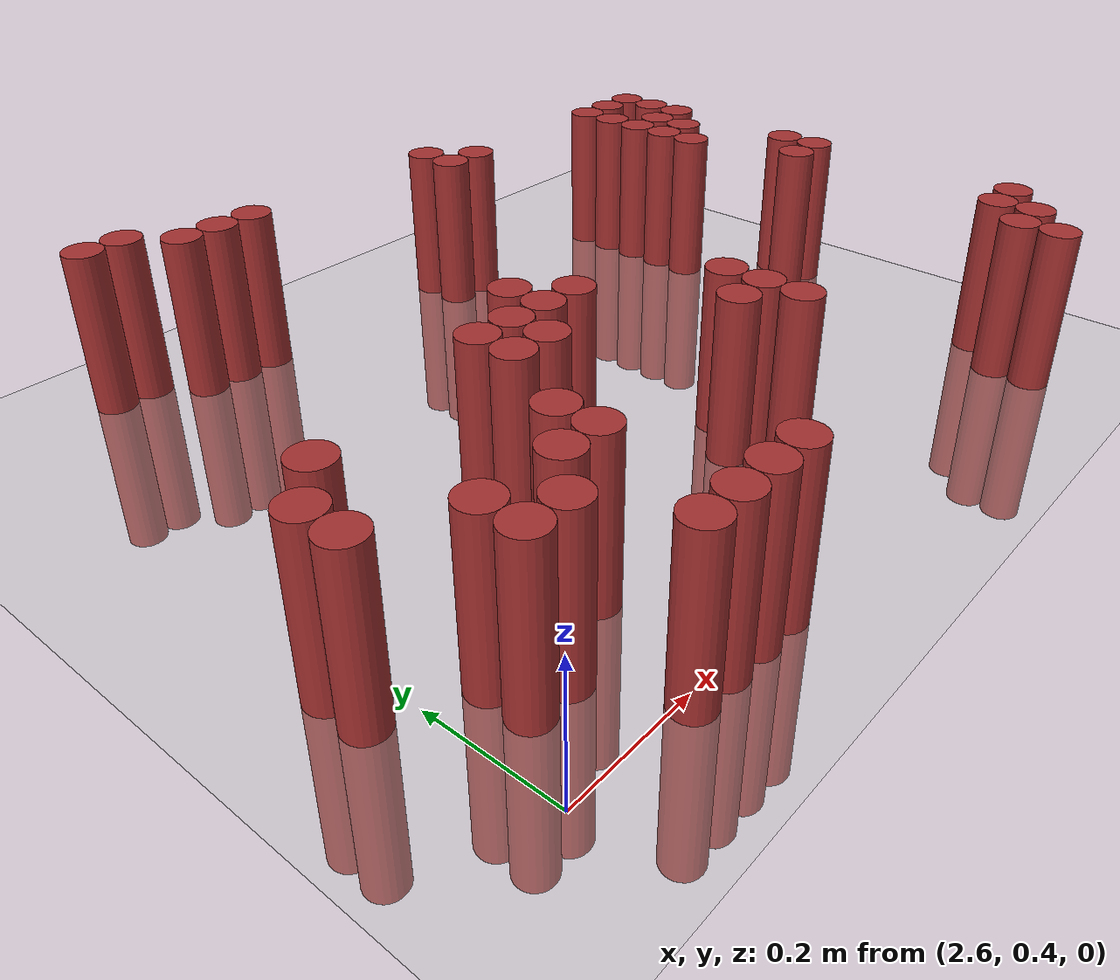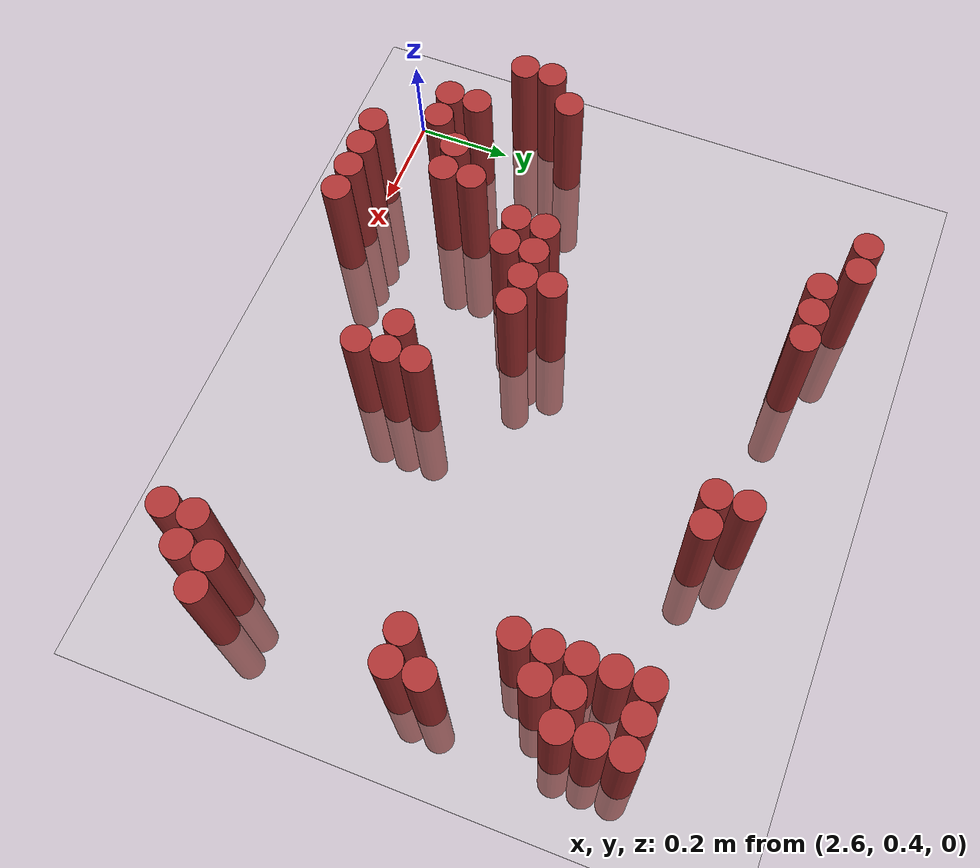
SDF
<sdf version="1.6">
 <world name="default">
  <model name="ground_plane">
   <static>1</static>
   <link name="link">
    <collision name="collision">
     <geometry><plane><normal>0 0 1</normal><size>100 100</size></plane></geometry>
     <surface><friction><ode><mu>100</mu><mu2>50</mu2></ode></friction></surface>
    </collision>
    <visual name="visual">
     <cast_shadows>0</cast_shadows>
     <geometry><plane><normal>0 0 1</normal><size>100 100</size></plane></geometry>
     <material>
      <script><uri>file://media/materials/scripts/gazebo.material</uri><name>Gazebo/Grey</name></script>
     </material>
    </visual>
   </link>
  </model>
  <model name="unit_cylinder_164">
   <static>1</static>
   <pose>2.730000 1.410000 0.000000 0.000000 0.000000 0.000000</pose>
   <link name="link">
    <inertial>
     <mass>1</mass>
     <inertia><ixx>0.145833</ixx><ixy>0</ixy><ixz>0</ixz><iyy>0.145833</iyy><iyz>0</iyz><izz>0.125</izz></inertia>
    </inertial>
    <collision name="collision">
     <geometry><cylinder><radius>0.030000</radius><length>0.5</length></cylinder></geometry>
    </collision>
    <visual name="visual">
     <geometry><cylinder><radius>0.030000</radius><length>0.5</length></cylinder></geometry>
     <material>
      <ambient>0.648000 0.192000 0.192000 1</ambient>
      <diffuse>0.648000 0.192000 0.192000 1</diffuse>
     </material>
     <material>
      <script><name>Gazebo/Grey</name><uri>file://media/materials/scripts/gazebo.material</uri></script>
     </material>
    </visual>
   </link>
  </model>
  <model name="unit_cylinder_165">
   <static>1</static>
   <pose>2.790000 1.410000 0.000000 0.000000 0.000000 0.000000</pose>
   <link name="link">
    <inertial>
     <mass>1</mass>
     <inertia><ixx>0.145833</ixx><ixy>0</ixy><ixz>0</ixz><iyy>0.145833</iyy><iyz>0</iyz><izz>0.125</izz></inertia>
    </inertial>
    <collision name="collision">
     <geometry><cylinder><radius>0.030000</radius><length>0.5</length></cylinder></geometry>
    </collision>
    <visual name="visual">
     <geometry><cylinder><radius>0.030000</radius><length>0.5</length></cylinder></geometry>
     <material>
      <ambient>0.648000 0.192000 0.192000 1</ambient>
      <diffuse>0.648000 0.192000 0.192000 1</diffuse>
     </material>
     <material>
      <script><name>Gazebo/Grey</name><uri>file://media/materials/scripts/gazebo.material</uri></script>
     </material>
    </visual>
   </link>
  </model>
  <model name="unit_cylinder_170">
   <static>1</static>
   <pose>2.850000 1.350000 0.000000 0.000000 0.000000 0.000000</pose>
   <link name="link">
    <inertial>
     <mass>1</mass>
     <inertia><ixx>0.145833</ixx><ixy>0</ixy><ixz>0</ixz><iyy>0.145833</iyy><iyz>0</iyz><izz>0.125</izz></inertia>
    </inertial>
    <collision name="collision">
     <geometry><cylinder><radius>0.030000</radius><length>0.5</length></cylinder></geometry>
    </collision>
    <visual name="visual">
     <geometry><cylinder><radius>0.030000</radius><length>0.5</length></cylinder></geometry>
     <material>
      <ambient>0.648000 0.192000 0.192000 1</ambient>
      <diffuse>0.648000 0.192000 0.192000 1</diffuse>
     </material>
     <material>
      <script><name>Gazebo/Grey</name><uri>file://media/materials/scripts/gazebo.material</uri></script>
     </material>
    </visual>
   </link>
  </model>
  <model name="unit_cylinder_171">
   <static>1</static>
   <pose>2.910000 1.350000 0.000000 0.000000 0.000000 0.000000</pose>
   <link name="link">
    <inertial>
     <mass>1</mass>
     <inertia><ixx>0.145833</ixx><ixy>0</ixy><ixz>0</ixz><iyy>0.145833</iyy><iyz>0</iyz><izz>0.125</izz></inertia>
    </inertial>
    <collision name="collision">
     <geometry><cylinder><radius>0.030000</radius><length>0.5</length></cylinder></geometry>
    </collision>
    <visual name="visual">
     <geometry><cylinder><radius>0.030000</radius><length>0.5</length></cylinder></geometry>
     <material>
      <ambient>0.648000 0.192000 0.192000 1</ambient>
      <diffuse>0.648000 0.192000 0.192000 1</diffuse>
     </material>
     <material>
      <script><name>Gazebo/Grey</name><uri>file://media/materials/scripts/gazebo.material</uri></script>
     </material>
    </visual>
   </link>
  </model>
  <model name="unit_cylinder_172">
   <static>1</static>
   <pose>2.970000 1.350000 0.000000 0.000000 0.000000 0.000000</pose>
   <link name="link">
    <inertial>
     <mass>1</mass>
     <inertia><ixx>0.145833</ixx><ixy>0</ixy><ixz>0</ixz><iyy>0.145833</iyy><iyz>0</iyz><izz>0.125</izz></inertia>
    </inertial>
    <collision name="collision">
     <geometry><cylinder><radius>0.030000</radius><length>0.5</length></cylinder></geometry>
    </collision>
    <visual name="visual">
     <geometry><cylinder><radius>0.030000</radius><length>0.5</length></cylinder></geometry>
     <material>
      <ambient>0.648000 0.192000 0.192000 1</ambient>
      <diffuse>0.648000 0.192000 0.192000 1</diffuse>
     </material>
     <material>
      <script><name>Gazebo/Grey</name><uri>file://media/materials/scripts/gazebo.material</uri></script>
     </material>
    </visual>
   </link>
  </model>
  <model name="unit_cylinder_173">
   <static>1</static>
   <pose>3.330000 1.350000 0.000000 0.000000 0.000000 0.000000</pose>
   <link name="link">
    <inertial>
     <mass>1</mass>
     <inertia><ixx>0.145833</ixx><ixy>0</ixy><ixz>0</ixz><iyy>0.145833</iyy><iyz>0</iyz><izz>0.125</izz></inertia>
    </inertial>
    <collision name="collision">
     <geometry><cylinder><radius>0.030000</radius><length>0.5</length></cylinder></geometry>
    </collision>
    <visual name="visual">
     <geometry><cylinder><radius>0.030000</radius><length>0.5</length></cylinder></geometry>
     <material>
      <ambient>0.648000 0.192000 0.192000 1</ambient>
      <diffuse>0.648000 0.192000 0.192000 1</diffuse>
     </material>
     <material>
      <script><name>Gazebo/Grey</name><uri>file://media/materials/scripts/gazebo.material</uri></script>
     </material>
    </visual>
   </link>
  </model>
  <model name="unit_cylinder_176">
   <static>1</static>
   <pose>3.330000 1.290000 0.000000 0.000000 0.000000 0.000000</pose>
   <link name="link">
    <inertial>
     <mass>1</mass>
     <inertia><ixx>0.145833</ixx><ixy>0</ixy><ixz>0</ixz><iyy>0.145833</iyy><iyz>0</iyz><izz>0.125</izz></inertia>
    </inertial>
    <collision name="collision">
     <geometry><cylinder><radius>0.030000</radius><length>0.5</length></cylinder></geometry>
    </collision>
    <visual name="visual">
     <geometry><cylinder><radius>0.030000</radius><length>0.5</length></cylinder></geometry>
     <material>
      <ambient>0.648000 0.192000 0.192000 1</ambient>
      <diffuse>0.648000 0.192000 0.192000 1</diffuse>
     </material>
     <material>
      <script><name>Gazebo/Grey</name><uri>file://media/materials/scripts/gazebo.material</uri></script>
     </material>
    </visual>
   </link>
  </model>
  <model name="unit_cylinder_177">
   <static>1</static>
   <pose>3.390000 1.290000 0.000000 0.000000 0.000000 0.000000</pose>
   <link name="link">
    <inertial>
     <mass>1</mass>
     <inertia><ixx>0.145833</ixx><ixy>0</ixy><ixz>0</ixz><iyy>0.145833</iyy><iyz>0</iyz><izz>0.125</izz></inertia>
    </inertial>
    <collision name="collision">
     <geometry><cylinder><radius>0.030000</radius><length>0.5</length></cylinder></geometry>
    </collision>
    <visual name="visual">
     <geometry><cylinder><radius>0.030000</radius><length>0.5</length></cylinder></geometry>
     <material>
      <ambient>0.648000 0.192000 0.192000 1</ambient>
      <diffuse>0.648000 0.192000 0.192000 1</diffuse>
     </material>
     <material>
      <script><name>Gazebo/Grey</name><uri>file://media/materials/scripts/gazebo.material</uri></script>
     </material>
    </visual>
   </link>
  </model>
  <model name="unit_cylinder_178">
   <static>1</static>
   <pose>3.690000 1.290000 0.000000 0.000000 0.000000 0.000000</pose>
   <link name="link">
    <inertial>
     <mass>1</mass>
     <inertia><ixx>0.145833</ixx><ixy>0</ixy><ixz>0</ixz><iyy>0.145833</iyy><iyz>0</iyz><izz>0.125</izz></inertia>
    </inertial>
    <collision name="collision">
     <geometry><cylinder><radius>0.030000</radius><length>0.5</length></cylinder></geometry>
    </collision>
    <visual name="visual">
     <geometry><cylinder><radius>0.030000</radius><length>0.5</length></cylinder></geometry>
     <material>
      <ambient>0.648000 0.192000 0.192000 1</ambient>
      <diffuse>0.648000 0.192000 0.192000 1</diffuse>
     </material>
     <material>
      <script><name>Gazebo/Grey</name><uri>file://media/materials/scripts/gazebo.material</uri></script>
     </material>
    </visual>
   </link>
  </model>
  <model name="unit_cylinder_179">
   <static>1</static>
   <pose>3.750000 1.290000 0.000000 0.000000 0.000000 0.000000</pose>
   <link name="link">
    <inertial>
     <mass>1</mass>
     <inertia><ixx>0.145833</ixx><ixy>0</ixy><ixz>0</ixz><iyy>0.145833</iyy><iyz>0</iyz><izz>0.125</izz></inertia>
    </inertial>
    <collision name="collision">
     <geometry><cylinder><radius>0.030000</radius><length>0.5</length></cylinder></geometry>
    </collision>
    <visual name="visual">
     <geometry><cylinder><radius>0.030000</radius><length>0.5</length></cylinder></geometry>
     <material>
      <ambient>0.648000 0.192000 0.192000 1</ambient>
      <diffuse>0.648000 0.192000 0.192000 1</diffuse>
     </material>
     <material>
      <script><name>Gazebo/Grey</name><uri>file://media/materials/scripts/gazebo.material</uri></script>
     </material>
    </visual>
   </link>
  </model>
  <model name="unit_cylinder_180">
   <static>1</static>
   <pose>3.810000 1.290000 0.000000 0.000000 0.000000 0.000000</pose>
   <link name="link">
    <inertial>
     <mass>1</mass>
     <inertia><ixx>0.145833</ixx><ixy>0</ixy><ixz>0</ixz><iyy>0.145833</iyy><iyz>0</iyz><izz>0.125</izz></inertia>
    </inertial>
    <collision name="collision">
     <geometry><cylinder><radius>0.030000</radius><length>0.5</length></cylinder></geometry>
    </collision>
    <visual name="visual">
     <geometry><cylinder><radius>0.030000</radius><length>0.5</length></cylinder></geometry>
     <material>
      <ambient>0.648000 0.192000 0.192000 1</ambient>
      <diffuse>0.648000 0.192000 0.192000 1</diffuse>
     </material>
     <material>
      <script><name>Gazebo/Grey</name><uri>file://media/materials/scripts/gazebo.material</uri></script>
     </material>
    </visual>
   </link>
  </model>
  <model name="unit_cylinder_183">
   <static>1</static>
   <pose>3.690000 1.230000 0.000000 0.000000 0.000000 0.000000</pose>
   <link name="link">
    <inertial>
     <mass>1</mass>
     <inertia><ixx>0.145833</ixx><ixy>0</ixy><ixz>0</ixz><iyy>0.145833</iyy><iyz>0</iyz><izz>0.125</izz></inertia>
    </inertial>
    <collision name="collision">
     <geometry><cylinder><radius>0.030000</radius><length>0.5</length></cylinder></geometry>
    </collision>
    <visual name="visual">
     <geometry><cylinder><radius>0.030000</radius><length>0.5</length></cylinder></geometry>
     <material>
      <ambient>0.648000 0.192000 0.192000 1</ambient>
      <diffuse>0.648000 0.192000 0.192000 1</diffuse>
     </material>
     <material>
      <script><name>Gazebo/Grey</name><uri>file://media/materials/scripts/gazebo.material</uri></script>
     </material>
    </visual>
   </link>
  </model>
  <model name="unit_cylinder_184">
   <static>1</static>
   <pose>3.810000 1.230000 0.000000 0.000000 0.000000 0.000000</pose>
   <link name="link">
    <inertial>
     <mass>1</mass>
     <inertia><ixx>0.145833</ixx><ixy>0</ixy><ixz>0</ixz><iyy>0.145833</iyy><iyz>0</iyz><izz>0.125</izz></inertia>
    </inertial>
    <collision name="collision">
     <geometry><cylinder><radius>0.030000</radius><length>0.5</length></cylinder></geometry>
    </collision>
    <visual name="visual">
     <geometry><cylinder><radius>0.030000</radius><length>0.5</length></cylinder></geometry>
     <material>
      <ambient>0.648000 0.192000 0.192000 1</ambient>
      <diffuse>0.648000 0.192000 0.192000 1</diffuse>
     </material>
     <material>
      <script><name>Gazebo/Grey</name><uri>file://media/materials/scripts/gazebo.material</uri></script>
     </material>
    </visual>
   </link>
  </model>
  <model name="unit_cylinder_185">
   <static>1</static>
   <pose>3.690000 1.170000 0.000000 0.000000 0.000000 0.000000</pose>
   <link name="link">
    <inertial>
     <mass>1</mass>
     <inertia><ixx>0.145833</ixx><ixy>0</ixy><ixz>0</ixz><iyy>0.145833</iyy><iyz>0</iyz><izz>0.125</izz></inertia>
    </inertial>
    <collision name="collision">
     <geometry><cylinder><radius>0.030000</radius><length>0.5</length></cylinder></geometry>
    </collision>
    <visual name="visual">
     <geometry><cylinder><radius>0.030000</radius><length>0.5</length></cylinder></geometry>
     <material>
      <ambient>0.648000 0.192000 0.192000 1</ambient>
      <diffuse>0.648000 0.192000 0.192000 1</diffuse>
     </material>
     <material>
      <script><name>Gazebo/Grey</name><uri>file://media/materials/scripts/gazebo.material</uri></script>
     </material>
    </visual>
   </link>
  </model>
  <model name="unit_cylinder_186">
   <static>1</static>
   <pose>3.750000 1.170000 0.000000 0.000000 0.000000 0.000000</pose>
   <link name="link">
    <inertial>
     <mass>1</mass>
     <inertia><ixx>0.145833</ixx><ixy>0</ixy><ixz>0</ixz><iyy>0.145833</iyy><iyz>0</iyz><izz>0.125</izz></inertia>
    </inertial>
    <collision name="collision">
     <geometry><cylinder><radius>0.030000</radius><length>0.5</length></cylinder></geometry>
    </collision>
    <visual name="visual">
     <geometry><cylinder><radius>0.030000</radius><length>0.5</length></cylinder></geometry>
     <material>
      <ambient>0.648000 0.192000 0.192000 1</ambient>
      <diffuse>0.648000 0.192000 0.192000 1</diffuse>
     </material>
     <material>
      <script><name>Gazebo/Grey</name><uri>file://media/materials/scripts/gazebo.material</uri></script>
     </material>
    </visual>
   </link>
  </model>
  <model name="unit_cylinder_187">
   <static>1</static>
   <pose>3.810000 1.170000 0.000000 0.000000 0.000000 0.000000</pose>
   <link name="link">
    <inertial>
     <mass>1</mass>
     <inertia><ixx>0.145833</ixx><ixy>0</ixy><ixz>0</ixz><iyy>0.145833</iyy><iyz>0</iyz><izz>0.125</izz></inertia>
    </inertial>
    <collision name="collision">
     <geometry><cylinder><radius>0.030000</radius><length>0.5</length></cylinder></geometry>
    </collision>
    <visual name="visual">
     <geometry><cylinder><radius>0.030000</radius><length>0.5</length></cylinder></geometry>
     <material>
      <ambient>0.648000 0.192000 0.192000 1</ambient>
      <diffuse>0.648000 0.192000 0.192000 1</diffuse>
     </material>
     <material>
      <script><name>Gazebo/Grey</name><uri>file://media/materials/scripts/gazebo.material</uri></script>
     </material>
    </visual>
   </link>
  </model>
  <model name="unit_cylinder_188">
   <static>1</static>
   <pose>3.690000 1.110000 0.000000 0.000000 0.000000 0.000000</pose>
   <link name="link">
    <inertial>
     <mass>1</mass>
     <inertia><ixx>0.145833</ixx><ixy>0</ixy><ixz>0</ixz><iyy>0.145833</iyy><iyz>0</iyz><izz>0.125</izz></inertia>
    </inertial>
    <collision name="collision">
     <geometry><cylinder><radius>0.030000</radius><length>0.5</length></cylinder></geometry>
    </collision>
    <visual name="visual">
     <geometry><cylinder><radius>0.030000</radius><length>0.5</length></cylinder></geometry>
     <material>
      <ambient>0.648000 0.192000 0.192000 1</ambient>
      <diffuse>0.648000 0.192000 0.192000 1</diffuse>
     </material>
     <material>
      <script><name>Gazebo/Grey</name><uri>file://media/materials/scripts/gazebo.material</uri></script>
     </material>
    </visual>
   </link>
  </model>
  <model name="unit_cylinder_189">
   <static>1</static>
   <pose>3.750000 1.110000 0.000000 0.000000 0.000000 0.000000</pose>
   <link name="link">
    <inertial>
     <mass>1</mass>
     <inertia><ixx>0.145833</ixx><ixy>0</ixy><ixz>0</ixz><iyy>0.145833</iyy><iyz>0</iyz><izz>0.125</izz></inertia>
    </inertial>
    <collision name="collision">
     <geometry><cylinder><radius>0.030000</radius><length>0.5</length></cylinder></geometry>
    </collision>
    <visual name="visual">
     <geometry><cylinder><radius>0.030000</radius><length>0.5</length></cylinder></geometry>
     <material>
      <ambient>0.648000 0.192000 0.192000 1</ambient>
      <diffuse>0.648000 0.192000 0.192000 1</diffuse>
     </material>
     <material>
      <script><name>Gazebo/Grey</name><uri>file://media/materials/scripts/gazebo.material</uri></script>
     </material>
    </visual>
   </link>
  </model>
  <model name="unit_cylinder_190">
   <static>1</static>
   <pose>3.690000 1.050000 0.000000 0.000000 0.000000 0.000000</pose>
   <link name="link">
    <inertial>
     <mass>1</mass>
     <inertia><ixx>0.145833</ixx><ixy>0</ixy><ixz>0</ixz><iyy>0.145833</iyy><iyz>0</iyz><izz>0.125</izz></inertia>
    </inertial>
    <collision name="collision">
     <geometry><cylinder><radius>0.030000</radius><length>0.5</length></cylinder></geometry>
    </collision>
    <visual name="visual">
     <geometry><cylinder><radius>0.030000</radius><length>0.5</length></cylinder></geometry>
     <material>
      <ambient>0.648000 0.192000 0.192000 1</ambient>
      <diffuse>0.648000 0.192000 0.192000 1</diffuse>
     </material>
     <material>
      <script><name>Gazebo/Grey</name><uri>file://media/materials/scripts/gazebo.material</uri></script>
     </material>
    </visual>
   </link>
  </model>
  <model name="unit_cylinder_191">
   <static>1</static>
   <pose>3.810000 0.930000 0.000000 0.000000 0.000000 0.000000</pose>
   <link name="link">
    <inertial>
     <mass>1</mass>
     <inertia><ixx>0.145833</ixx><ixy>0</ixy><ixz>0</ixz><iyy>0.145833</iyy><iyz>0</iyz><izz>0.125</izz></inertia>
    </inertial>
    <collision name="collision">
     <geometry><cylinder><radius>0.030000</radius><length>0.5</length></cylinder></geometry>
    </collision>
    <visual name="visual">
     <geometry><cylinder><radius>0.030000</radius><length>0.5</length></cylinder></geometry>
     <material>
      <ambient>0.648000 0.192000 0.192000 1</ambient>
      <diffuse>0.648000 0.192000 0.192000 1</diffuse>
     </material>
     <material>
      <script><name>Gazebo/Grey</name><uri>file://media/materials/scripts/gazebo.material</uri></script>
     </material>
    </visual>
   </link>
  </model>
  <model name="unit_cylinder_192">
   <static>1</static>
   <pose>3.030000 0.870000 0.000000 0.000000 0.000000 0.000000</pose>
   <link name="link">
    <inertial>
     <mass>1</mass>
     <inertia><ixx>0.145833</ixx><ixy>0</ixy><ixz>0</ixz><iyy>0.145833</iyy><iyz>0</iyz><izz>0.125</izz></inertia>
    </inertial>
    <collision name="collision">
     <geometry><cylinder><radius>0.030000</radius><length>0.5</length></cylinder></geometry>
    </collision>
    <visual name="visual">
     <geometry><cylinder><radius>0.030000</radius><length>0.5</length></cylinder></geometry>
     <material>
      <ambient>0.648000 0.192000 0.192000 1</ambient>
      <diffuse>0.648000 0.192000 0.192000 1</diffuse>
     </material>
     <material>
      <script><name>Gazebo/Grey</name><uri>file://media/materials/scripts/gazebo.material</uri></script>
     </material>
    </visual>
   </link>
  </model>
  <model name="unit_cylinder_193">
   <static>1</static>
   <pose>3.750000 0.870000 0.000000 0.000000 0.000000 0.000000</pose>
   <link name="link">
    <inertial>
     <mass>1</mass>
     <inertia><ixx>0.145833</ixx><ixy>0</ixy><ixz>0</ixz><iyy>0.145833</iyy><iyz>0</iyz><izz>0.125</izz></inertia>
    </inertial>
    <collision name="collision">
     <geometry><cylinder><radius>0.030000</radius><length>0.5</length></cylinder></geometry>
    </collision>
    <visual name="visual">
     <geometry><cylinder><radius>0.030000</radius><length>0.5</length></cylinder></geometry>
     <material>
      <ambient>0.648000 0.192000 0.192000 1</ambient>
      <diffuse>0.648000 0.192000 0.192000 1</diffuse>
     </material>
     <material>
      <script><name>Gazebo/Grey</name><uri>file://media/materials/scripts/gazebo.material</uri></script>
     </material>
    </visual>
   </link>
  </model>
  <model name="unit_cylinder_194">
   <static>1</static>
   <pose>3.810000 0.870000 0.000000 0.000000 0.000000 0.000000</pose>
   <link name="link">
    <inertial>
     <mass>1</mass>
     <inertia><ixx>0.145833</ixx><ixy>0</ixy><ixz>0</ixz><iyy>0.145833</iyy><iyz>0</iyz><izz>0.125</izz></inertia>
    </inertial>
    <collision name="collision">
     <geometry><cylinder><radius>0.030000</radius><length>0.5</length></cylinder></geometry>
    </collision>
    <visual name="visual">
     <geometry><cylinder><radius>0.030000</radius><length>0.5</length></cylinder></geometry>
     <material>
      <ambient>0.648000 0.192000 0.192000 1</ambient>
      <diffuse>0.648000 0.192000 0.192000 1</diffuse>
     </material>
     <material>
      <script><name>Gazebo/Grey</name><uri>file://media/materials/scripts/gazebo.material</uri></script>
     </material>
    </visual>
   </link>
  </model>
  <model name="unit_cylinder_195">
   <static>1</static>
   <pose>2.910000 0.810000 0.000000 0.000000 0.000000 0.000000</pose>
   <link name="link">
    <inertial>
     <mass>1</mass>
     <inertia><ixx>0.145833</ixx><ixy>0</ixy><ixz>0</ixz><iyy>0.145833</iyy><iyz>0</iyz><izz>0.125</izz></inertia>
    </inertial>
    <collision name="collision">
     <geometry><cylinder><radius>0.030000</radius><length>0.5</length></cylinder></geometry>
    </collision>
    <visual name="visual">
     <geometry><cylinder><radius>0.030000</radius><length>0.5</length></cylinder></geometry>
     <material>
      <ambient>0.648000 0.192000 0.192000 1</ambient>
      <diffuse>0.648000 0.192000 0.192000 1</diffuse>
     </material>
     <material>
      <script><name>Gazebo/Grey</name><uri>file://media/materials/scripts/gazebo.material</uri></script>
     </material>
    </visual>
   </link>
  </model>
  <model name="unit_cylinder_196">
   <static>1</static>
   <pose>2.970000 0.810000 0.000000 0.000000 0.000000 0.000000</pose>
   <link name="link">
    <inertial>
     <mass>1</mass>
     <inertia><ixx>0.145833</ixx><ixy>0</ixy><ixz>0</ixz><iyy>0.145833</iyy><iyz>0</iyz><izz>0.125</izz></inertia>
    </inertial>
    <collision name="collision">
     <geometry><cylinder><radius>0.030000</radius><length>0.5</length></cylinder></geometry>
    </collision>
    <visual name="visual">
     <geometry><cylinder><radius>0.030000</radius><length>0.5</length></cylinder></geometry>
     <material>
      <ambient>0.648000 0.192000 0.192000 1</ambient>
      <diffuse>0.648000 0.192000 0.192000 1</diffuse>
     </material>
     <material>
      <script><name>Gazebo/Grey</name><uri>file://media/materials/scripts/gazebo.material</uri></script>
     </material>
    </visual>
   </link>
  </model>
  <model name="unit_cylinder_197">
   <static>1</static>
   <pose>3.030000 0.810000 0.000000 0.000000 0.000000 0.000000</pose>
   <link name="link">
    <inertial>
     <mass>1</mass>
     <inertia><ixx>0.145833</ixx><ixy>0</ixy><ixz>0</ixz><iyy>0.145833</iyy><iyz>0</iyz><izz>0.125</izz></inertia>
    </inertial>
    <collision name="collision">
     <geometry><cylinder><radius>0.030000</radius><length>0.5</length></cylinder></geometry>
    </collision>
    <visual name="visual">
     <geometry><cylinder><radius>0.030000</radius><length>0.5</length></cylinder></geometry>
     <material>
      <ambient>0.648000 0.192000 0.192000 1</ambient>
      <diffuse>0.648000 0.192000 0.192000 1</diffuse>
     </material>
     <material>
      <script><name>Gazebo/Grey</name><uri>file://media/materials/scripts/gazebo.material</uri></script>
     </material>
    </visual>
   </link>
  </model>
  <model name="unit_cylinder_198">
   <static>1</static>
   <pose>3.090000 0.810000 0.000000 0.000000 0.000000 0.000000</pose>
   <link name="link">
    <inertial>
     <mass>1</mass>
     <inertia><ixx>0.145833</ixx><ixy>0</ixy><ixz>0</ixz><iyy>0.145833</iyy><iyz>0</iyz><izz>0.125</izz></inertia>
    </inertial>
    <collision name="collision">
     <geometry><cylinder><radius>0.030000</radius><length>0.5</length></cylinder></geometry>
    </collision>
    <visual name="visual">
     <geometry><cylinder><radius>0.030000</radius><length>0.5</length></cylinder></geometry>
     <material>
      <ambient>0.648000 0.192000 0.192000 1</ambient>
      <diffuse>0.648000 0.192000 0.192000 1</diffuse>
     </material>
     <material>
      <script><name>Gazebo/Grey</name><uri>file://media/materials/scripts/gazebo.material</uri></script>
     </material>
    </visual>
   </link>
  </model>
  <model name="unit_cylinder_203">
   <static>1</static>
   <pose>2.610000 0.750000 0.000000 0.000000 0.000000 0.000000</pose>
   <link name="link">
    <inertial>
     <mass>1</mass>
     <inertia><ixx>0.145833</ixx><ixy>0</ixy><ixz>0</ixz><iyy>0.145833</iyy><iyz>0</iyz><izz>0.125</izz></inertia>
    </inertial>
    <collision name="collision">
     <geometry><cylinder><radius>0.030000</radius><length>0.5</length></cylinder></geometry>
    </collision>
    <visual name="visual">
     <geometry><cylinder><radius>0.030000</radius><length>0.5</length></cylinder></geometry>
     <material>
      <ambient>0.648000 0.192000 0.192000 1</ambient>
      <diffuse>0.648000 0.192000 0.192000 1</diffuse>
     </material>
     <material>
      <script><name>Gazebo/Grey</name><uri>file://media/materials/scripts/gazebo.material</uri></script>
     </material>
    </visual>
   </link>
  </model>
  <model name="unit_cylinder_204">
   <static>1</static>
   <pose>2.910000 0.750000 0.000000 0.000000 0.000000 0.000000</pose>
   <link name="link">
    <inertial>
     <mass>1</mass>
     <inertia><ixx>0.145833</ixx><ixy>0</ixy><ixz>0</ixz><iyy>0.145833</iyy><iyz>0</iyz><izz>0.125</izz></inertia>
    </inertial>
    <collision name="collision">
     <geometry><cylinder><radius>0.030000</radius><length>0.5</length></cylinder></geometry>
    </collision>
    <visual name="visual">
     <geometry><cylinder><radius>0.030000</radius><length>0.5</length></cylinder></geometry>
     <material>
      <ambient>0.648000 0.192000 0.192000 1</ambient>
      <diffuse>0.648000 0.192000 0.192000 1</diffuse>
     </material>
     <material>
      <script><name>Gazebo/Grey</name><uri>file://media/materials/scripts/gazebo.material</uri></script>
     </material>
    </visual>
   </link>
  </model>
  <model name="unit_cylinder_205">
   <static>1</static>
   <pose>2.970000 0.750000 0.000000 0.000000 0.000000 0.000000</pose>
   <link name="link">
    <inertial>
     <mass>1</mass>
     <inertia><ixx>0.145833</ixx><ixy>0</ixy><ixz>0</ixz><iyy>0.145833</iyy><iyz>0</iyz><izz>0.125</izz></inertia>
    </inertial>
    <collision name="collision">
     <geometry><cylinder><radius>0.030000</radius><length>0.5</length></cylinder></geometry>
    </collision>
    <visual name="visual">
     <geometry><cylinder><radius>0.030000</radius><length>0.5</length></cylinder></geometry>
     <material>
      <ambient>0.648000 0.192000 0.192000 1</ambient>
      <diffuse>0.648000 0.192000 0.192000 1</diffuse>
     </material>
     <material>
      <script><name>Gazebo/Grey</name><uri>file://media/materials/scripts/gazebo.material</uri></script>
     </material>
    </visual>
   </link>
  </model>
  <model name="unit_cylinder_212">
   <static>1</static>
   <pose>2.550000 0.690000 0.000000 0.000000 0.000000 0.000000</pose>
   <link name="link">
    <inertial>
     <mass>1</mass>
     <inertia><ixx>0.145833</ixx><ixy>0</ixy><ixz>0</ixz><iyy>0.145833</iyy><iyz>0</iyz><izz>0.125</izz></inertia>
    </inertial>
    <collision name="collision">
     <geometry><cylinder><radius>0.030000</radius><length>0.5</length></cylinder></geometry>
    </collision>
    <visual name="visual">
     <geometry><cylinder><radius>0.030000</radius><length>0.5</length></cylinder></geometry>
     <material>
      <ambient>0.648000 0.192000 0.192000 1</ambient>
      <diffuse>0.648000 0.192000 0.192000 1</diffuse>
     </material>
     <material>
      <script><name>Gazebo/Grey</name><uri>file://media/materials/scripts/gazebo.material</uri></script>
     </material>
    </visual>
   </link>
  </model>
  <model name="unit_cylinder_213">
   <static>1</static>
   <pose>3.270000 0.690000 0.000000 0.000000 0.000000 0.000000</pose>
   <link name="link">
    <inertial>
     <mass>1</mass>
     <inertia><ixx>0.145833</ixx><ixy>0</ixy><ixz>0</ixz><iyy>0.145833</iyy><iyz>0</iyz><izz>0.125</izz></inertia>
    </inertial>
    <collision name="collision">
     <geometry><cylinder><radius>0.030000</radius><length>0.5</length></cylinder></geometry>
    </collision>
    <visual name="visual">
     <geometry><cylinder><radius>0.030000</radius><length>0.5</length></cylinder></geometry>
     <material>
      <ambient>0.648000 0.192000 0.192000 1</ambient>
      <diffuse>0.648000 0.192000 0.192000 1</diffuse>
     </material>
     <material>
      <script><name>Gazebo/Grey</name><uri>file://media/materials/scripts/gazebo.material</uri></script>
     </material>
    </visual>
   </link>
  </model>
  <model name="unit_cylinder_218">
   <static>1</static>
   <pose>2.550000 0.630000 0.000000 0.000000 0.000000 0.000000</pose>
   <link name="link">
    <inertial>
     <mass>1</mass>
     <inertia><ixx>0.145833</ixx><ixy>0</ixy><ixz>0</ixz><iyy>0.145833</iyy><iyz>0</iyz><izz>0.125</izz></inertia>
    </inertial>
    <collision name="collision">
     <geometry><cylinder><radius>0.030000</radius><length>0.5</length></cylinder></geometry>
    </collision>
    <visual name="visual">
     <geometry><cylinder><radius>0.030000</radius><length>0.5</length></cylinder></geometry>
     <material>
      <ambient>0.648000 0.192000 0.192000 1</ambient>
      <diffuse>0.648000 0.192000 0.192000 1</diffuse>
     </material>
     <material>
      <script><name>Gazebo/Grey</name><uri>file://media/materials/scripts/gazebo.material</uri></script>
     </material>
    </visual>
   </link>
  </model>
  <model name="unit_cylinder_219">
   <static>1</static>
   <pose>2.850000 0.630000 0.000000 0.000000 0.000000 0.000000</pose>
   <link name="link">
    <inertial>
     <mass>1</mass>
     <inertia><ixx>0.145833</ixx><ixy>0</ixy><ixz>0</ixz><iyy>0.145833</iyy><iyz>0</iyz><izz>0.125</izz></inertia>
    </inertial>
    <collision name="collision">
     <geometry><cylinder><radius>0.030000</radius><length>0.5</length></cylinder></geometry>
    </collision>
    <visual name="visual">
     <geometry><cylinder><radius>0.030000</radius><length>0.5</length></cylinder></geometry>
     <material>
      <ambient>0.648000 0.192000 0.192000 1</ambient>
      <diffuse>0.648000 0.192000 0.192000 1</diffuse>
     </material>
     <material>
      <script><name>Gazebo/Grey</name><uri>file://media/materials/scripts/gazebo.material</uri></script>
     </material>
    </visual>
   </link>
  </model>
  <model name="unit_cylinder_220">
   <static>1</static>
   <pose>3.210000 0.630000 0.000000 0.000000 0.000000 0.000000</pose>
   <link name="link">
    <inertial>
     <mass>1</mass>
     <inertia><ixx>0.145833</ixx><ixy>0</ixy><ixz>0</ixz><iyy>0.145833</iyy><iyz>0</iyz><izz>0.125</izz></inertia>
    </inertial>
    <collision name="collision">
     <geometry><cylinder><radius>0.030000</radius><length>0.5</length></cylinder></geometry>
    </collision>
    <visual name="visual">
     <geometry><cylinder><radius>0.030000</radius><length>0.5</length></cylinder></geometry>
     <material>
      <ambient>0.648000 0.192000 0.192000 1</ambient>
      <diffuse>0.648000 0.192000 0.192000 1</diffuse>
     </material>
     <material>
      <script><name>Gazebo/Grey</name><uri>file://media/materials/scripts/gazebo.material</uri></script>
     </material>
    </visual>
   </link>
  </model>
  <model name="unit_cylinder_221">
   <static>1</static>
   <pose>3.270000 0.630000 0.000000 0.000000 0.000000 0.000000</pose>
   <link name="link">
    <inertial>
     <mass>1</mass>
     <inertia><ixx>0.145833</ixx><ixy>0</ixy><ixz>0</ixz><iyy>0.145833</iyy><iyz>0</iyz><izz>0.125</izz></inertia>
    </inertial>
    <collision name="collision">
     <geometry><cylinder><radius>0.030000</radius><length>0.5</length></cylinder></geometry>
    </collision>
    <visual name="visual">
     <geometry><cylinder><radius>0.030000</radius><length>0.5</length></cylinder></geometry>
     <material>
      <ambient>0.648000 0.192000 0.192000 1</ambient>
      <diffuse>0.648000 0.192000 0.192000 1</diffuse>
     </material>
     <material>
      <script><name>Gazebo/Grey</name><uri>file://media/materials/scripts/gazebo.material</uri></script>
     </material>
    </visual>
   </link>
  </model>
  <model name="unit_cylinder_224">
   <static>1</static>
   <pose>2.670000 0.570000 0.000000 0.000000 0.000000 0.000000</pose>
   <link name="link">
    <inertial>
     <mass>1</mass>
     <inertia><ixx>0.145833</ixx><ixy>0</ixy><ixz>0</ixz><iyy>0.145833</iyy><iyz>0</iyz><izz>0.125</izz></inertia>
    </inertial>
    <collision name="collision">
     <geometry><cylinder><radius>0.030000</radius><length>0.5</length></cylinder></geometry>
    </collision>
    <visual name="visual">
     <geometry><cylinder><radius>0.030000</radius><length>0.5</length></cylinder></geometry>
     <material>
      <ambient>0.648000 0.192000 0.192000 1</ambient>
      <diffuse>0.648000 0.192000 0.192000 1</diffuse>
     </material>
     <material>
      <script><name>Gazebo/Grey</name><uri>file://media/materials/scripts/gazebo.material</uri></script>
     </material>
    </visual>
   </link>
  </model>
  <model name="unit_cylinder_225">
   <static>1</static>
   <pose>2.790000 0.570000 0.000000 0.000000 0.000000 0.000000</pose>
   <link name="link">
    <inertial>
     <mass>1</mass>
     <inertia><ixx>0.145833</ixx><ixy>0</ixy><ixz>0</ixz><iyy>0.145833</iyy><iyz>0</iyz><izz>0.125</izz></inertia>
    </inertial>
    <collision name="collision">
     <geometry><cylinder><radius>0.030000</radius><length>0.5</length></cylinder></geometry>
    </collision>
    <visual name="visual">
     <geometry><cylinder><radius>0.030000</radius><length>0.5</length></cylinder></geometry>
     <material>
      <ambient>0.648000 0.192000 0.192000 1</ambient>
      <diffuse>0.648000 0.192000 0.192000 1</diffuse>
     </material>
     <material>
      <script><name>Gazebo/Grey</name><uri>file://media/materials/scripts/gazebo.material</uri></script>
     </material>
    </visual>
   </link>
  </model>
  <model name="unit_cylinder_226">
   <static>1</static>
   <pose>2.850000 0.570000 0.000000 0.000000 0.000000 0.000000</pose>
   <link name="link">
    <inertial>
     <mass>1</mass>
     <inertia><ixx>0.145833</ixx><ixy>0</ixy><ixz>0</ixz><iyy>0.145833</iyy><iyz>0</iyz><izz>0.125</izz></inertia>
    </inertial>
    <collision name="collision">
     <geometry><cylinder><radius>0.030000</radius><length>0.5</length></cylinder></geometry>
    </collision>
    <visual name="visual">
     <geometry><cylinder><radius>0.030000</radius><length>0.5</length></cylinder></geometry>
     <material>
      <ambient>0.648000 0.192000 0.192000 1</ambient>
      <diffuse>0.648000 0.192000 0.192000 1</diffuse>
     </material>
     <material>
      <script><name>Gazebo/Grey</name><uri>file://media/materials/scripts/gazebo.material</uri></script>
     </material>
    </visual>
   </link>
  </model>
  <model name="unit_cylinder_227">
   <static>1</static>
   <pose>3.270000 0.570000 0.000000 0.000000 0.000000 0.000000</pose>
   <link name="link">
    <inertial>
     <mass>1</mass>
     <inertia><ixx>0.145833</ixx><ixy>0</ixy><ixz>0</ixz><iyy>0.145833</iyy><iyz>0</iyz><izz>0.125</izz></inertia>
    </inertial>
    <collision name="collision">
     <geometry><cylinder><radius>0.030000</radius><length>0.5</length></cylinder></geometry>
    </collision>
    <visual name="visual">
     <geometry><cylinder><radius>0.030000</radius><length>0.5</length></cylinder></geometry>
     <material>
      <ambient>0.648000 0.192000 0.192000 1</ambient>
      <diffuse>0.648000 0.192000 0.192000 1</diffuse>
     </material>
     <material>
      <script><name>Gazebo/Grey</name><uri>file://media/materials/scripts/gazebo.material</uri></script>
     </material>
    </visual>
   </link>
  </model>
  <model name="unit_cylinder_228">
   <static>1</static>
   <pose>2.670000 0.510000 0.000000 0.000000 0.000000 0.000000</pose>
   <link name="link">
    <inertial>
     <mass>1</mass>
     <inertia><ixx>0.145833</ixx><ixy>0</ixy><ixz>0</ixz><iyy>0.145833</iyy><iyz>0</iyz><izz>0.125</izz></inertia>
    </inertial>
    <collision name="collision">
     <geometry><cylinder><radius>0.030000</radius><length>0.5</length></cylinder></geometry>
    </collision>
    <visual name="visual">
     <geometry><cylinder><radius>0.030000</radius><length>0.5</length></cylinder></geometry>
     <material>
      <ambient>0.648000 0.192000 0.192000 1</ambient>
      <diffuse>0.648000 0.192000 0.192000 1</diffuse>
     </material>
     <material>
      <script><name>Gazebo/Grey</name><uri>file://media/materials/scripts/gazebo.material</uri></script>
     </material>
    </visual>
   </link>
  </model>
  <model name="unit_cylinder_229">
   <static>1</static>
   <pose>2.730000 0.510000 0.000000 0.000000 0.000000 0.000000</pose>
   <link name="link">
    <inertial>
     <mass>1</mass>
     <inertia><ixx>0.145833</ixx><ixy>0</ixy><ixz>0</ixz><iyy>0.145833</iyy><iyz>0</iyz><izz>0.125</izz></inertia>
    </inertial>
    <collision name="collision">
     <geometry><cylinder><radius>0.030000</radius><length>0.5</length></cylinder></geometry>
    </collision>
    <visual name="visual">
     <geometry><cylinder><radius>0.030000</radius><length>0.5</length></cylinder></geometry>
     <material>
      <ambient>0.648000 0.192000 0.192000 1</ambient>
      <diffuse>0.648000 0.192000 0.192000 1</diffuse>
     </material>
     <material>
      <script><name>Gazebo/Grey</name><uri>file://media/materials/scripts/gazebo.material</uri></script>
     </material>
    </visual>
   </link>
  </model>
  <model name="unit_cylinder_230">
   <static>1</static>
   <pose>3.750000 0.510000 0.000000 0.000000 0.000000 0.000000</pose>
   <link name="link">
    <inertial>
     <mass>1</mass>
     <inertia><ixx>0.145833</ixx><ixy>0</ixy><ixz>0</ixz><iyy>0.145833</iyy><iyz>0</iyz><izz>0.125</izz></inertia>
    </inertial>
    <collision name="collision">
     <geometry><cylinder><radius>0.030000</radius><length>0.5</length></cylinder></geometry>
    </collision>
    <visual name="visual">
     <geometry><cylinder><radius>0.030000</radius><length>0.5</length></cylinder></geometry>
     <material>
      <ambient>0.648000 0.192000 0.192000 1</ambient>
      <diffuse>0.648000 0.192000 0.192000 1</diffuse>
     </material>
     <material>
      <script><name>Gazebo/Grey</name><uri>file://media/materials/scripts/gazebo.material</uri></script>
     </material>
    </visual>
   </link>
  </model>
  <model name="unit_cylinder_231">
   <static>1</static>
   <pose>3.810000 0.510000 0.000000 0.000000 0.000000 0.000000</pose>
   <link name="link">
    <inertial>
     <mass>1</mass>
     <inertia><ixx>0.145833</ixx><ixy>0</ixy><ixz>0</ixz><iyy>0.145833</iyy><iyz>0</iyz><izz>0.125</izz></inertia>
    </inertial>
    <collision name="collision">
     <geometry><cylinder><radius>0.030000</radius><length>0.5</length></cylinder></geometry>
    </collision>
    <visual name="visual">
     <geometry><cylinder><radius>0.030000</radius><length>0.5</length></cylinder></geometry>
     <material>
      <ambient>0.648000 0.192000 0.192000 1</ambient>
      <diffuse>0.648000 0.192000 0.192000 1</diffuse>
     </material>
     <material>
      <script><name>Gazebo/Grey</name><uri>file://media/materials/scripts/gazebo.material</uri></script>
     </material>
    </visual>
   </link>
  </model>
  <model name="unit_cylinder_232">
   <static>1</static>
   <pose>3.690000 0.450000 0.000000 0.000000 0.000000 0.000000</pose>
   <link name="link">
    <inertial>
     <mass>1</mass>
     <inertia><ixx>0.145833</ixx><ixy>0</ixy><ixz>0</ixz><iyy>0.145833</iyy><iyz>0</iyz><izz>0.125</izz></inertia>
    </inertial>
    <collision name="collision">
     <geometry><cylinder><radius>0.030000</radius><length>0.5</length></cylinder></geometry>
    </collision>
    <visual name="visual">
     <geometry><cylinder><radius>0.030000</radius><length>0.5</length></cylinder></geometry>
     <material>
      <ambient>0.648000 0.192000 0.192000 1</ambient>
      <diffuse>0.648000 0.192000 0.192000 1</diffuse>
     </material>
     <material>
      <script><name>Gazebo/Grey</name><uri>file://media/materials/scripts/gazebo.material</uri></script>
     </material>
    </visual>
   </link>
  </model>
  <model name="unit_cylinder_233">
   <static>1</static>
   <pose>3.750000 0.450000 0.000000 0.000000 0.000000 0.000000</pose>
   <link name="link">
    <inertial>
     <mass>1</mass>
     <inertia><ixx>0.145833</ixx><ixy>0</ixy><ixz>0</ixz><iyy>0.145833</iyy><iyz>0</iyz><izz>0.125</izz></inertia>
    </inertial>
    <collision name="collision">
     <geometry><cylinder><radius>0.030000</radius><length>0.5</length></cylinder></geometry>
    </collision>
    <visual name="visual">
     <geometry><cylinder><radius>0.030000</radius><length>0.5</length></cylinder></geometry>
     <material>
      <ambient>0.648000 0.192000 0.192000 1</ambient>
      <diffuse>0.648000 0.192000 0.192000 1</diffuse>
     </material>
     <material>
      <script><name>Gazebo/Grey</name><uri>file://media/materials/scripts/gazebo.material</uri></script>
     </material>
    </visual>
   </link>
  </model>
  <model name="unit_cylinder_239">
   <static>1</static>
   <pose>2.790000 0.390000 0.000000 0.000000 0.000000 0.000000</pose>
   <link name="link">
    <inertial>
     <mass>1</mass>
     <inertia><ixx>0.145833</ixx><ixy>0</ixy><ixz>0</ixz><iyy>0.145833</iyy><iyz>0</iyz><izz>0.125</izz></inertia>
    </inertial>
    <collision name="collision">
     <geometry><cylinder><radius>0.030000</radius><length>0.5</length></cylinder></geometry>
    </collision>
    <visual name="visual">
     <geometry><cylinder><radius>0.030000</radius><length>0.5</length></cylinder></geometry>
     <material>
      <ambient>0.648000 0.192000 0.192000 1</ambient>
      <diffuse>0.648000 0.192000 0.192000 1</diffuse>
     </material>
     <material>
      <script><name>Gazebo/Grey</name><uri>file://media/materials/scripts/gazebo.material</uri></script>
     </material>
    </visual>
   </link>
  </model>
  <model name="unit_cylinder_240">
   <static>1</static>
   <pose>2.850000 0.390000 0.000000 0.000000 0.000000 0.000000</pose>
   <link name="link">
    <inertial>
     <mass>1</mass>
     <inertia><ixx>0.145833</ixx><ixy>0</ixy><ixz>0</ixz><iyy>0.145833</iyy><iyz>0</iyz><izz>0.125</izz></inertia>
    </inertial>
    <collision name="collision">
     <geometry><cylinder><radius>0.030000</radius><length>0.5</length></cylinder></geometry>
    </collision>
    <visual name="visual">
     <geometry><cylinder><radius>0.030000</radius><length>0.5</length></cylinder></geometry>
     <material>
      <ambient>0.648000 0.192000 0.192000 1</ambient>
      <diffuse>0.648000 0.192000 0.192000 1</diffuse>
     </material>
     <material>
      <script><name>Gazebo/Grey</name><uri>file://media/materials/scripts/gazebo.material</uri></script>
     </material>
    </visual>
   </link>
  </model>
  <model name="unit_cylinder_241">
   <static>1</static>
   <pose>2.910000 0.390000 0.000000 0.000000 0.000000 0.000000</pose>
   <link name="link">
    <inertial>
     <mass>1</mass>
     <inertia><ixx>0.145833</ixx><ixy>0</ixy><ixz>0</ixz><iyy>0.145833</iyy><iyz>0</iyz><izz>0.125</izz></inertia>
    </inertial>
    <collision name="collision">
     <geometry><cylinder><radius>0.030000</radius><length>0.5</length></cylinder></geometry>
    </collision>
    <visual name="visual">
     <geometry><cylinder><radius>0.030000</radius><length>0.5</length></cylinder></geometry>
     <material>
      <ambient>0.648000 0.192000 0.192000 1</ambient>
      <diffuse>0.648000 0.192000 0.192000 1</diffuse>
     </material>
     <material>
      <script><name>Gazebo/Grey</name><uri>file://media/materials/scripts/gazebo.material</uri></script>
     </material>
    </visual>
   </link>
  </model>
  <model name="unit_cylinder_242">
   <static>1</static>
   <pose>2.970000 0.390000 0.000000 0.000000 0.000000 0.000000</pose>
   <link name="link">
    <inertial>
     <mass>1</mass>
     <inertia><ixx>0.145833</ixx><ixy>0</ixy><ixz>0</ixz><iyy>0.145833</iyy><iyz>0</iyz><izz>0.125</izz></inertia>
    </inertial>
    <collision name="collision">
     <geometry><cylinder><radius>0.030000</radius><length>0.5</length></cylinder></geometry>
    </collision>
    <visual name="visual">
     <geometry><cylinder><radius>0.030000</radius><length>0.5</length></cylinder></geometry>
     <material>
      <ambient>0.648000 0.192000 0.192000 1</ambient>
      <diffuse>0.648000 0.192000 0.192000 1</diffuse>
     </material>
     <material>
      <script><name>Gazebo/Grey</name><uri>file://media/materials/scripts/gazebo.material</uri></script>
     </material>
    </visual>
   </link>
  </model>
  <model name="unit_cylinder_243">
   <static>1</static>
   <pose>3.690000 0.390000 0.000000 0.000000 0.000000 0.000000</pose>
   <link name="link">
    <inertial>
     <mass>1</mass>
     <inertia><ixx>0.145833</ixx><ixy>0</ixy><ixz>0</ixz><iyy>0.145833</iyy><iyz>0</iyz><izz>0.125</izz></inertia>
    </inertial>
    <collision name="collision">
     <geometry><cylinder><radius>0.030000</radius><length>0.5</length></cylinder></geometry>
    </collision>
    <visual name="visual">
     <geometry><cylinder><radius>0.030000</radius><length>0.5</length></cylinder></geometry>
     <material>
      <ambient>0.648000 0.192000 0.192000 1</ambient>
      <diffuse>0.648000 0.192000 0.192000 1</diffuse>
     </material>
     <material>
      <script><name>Gazebo/Grey</name><uri>file://media/materials/scripts/gazebo.material</uri></script>
     </material>
    </visual>
   </link>
  </model>
 </world>
</sdf>
